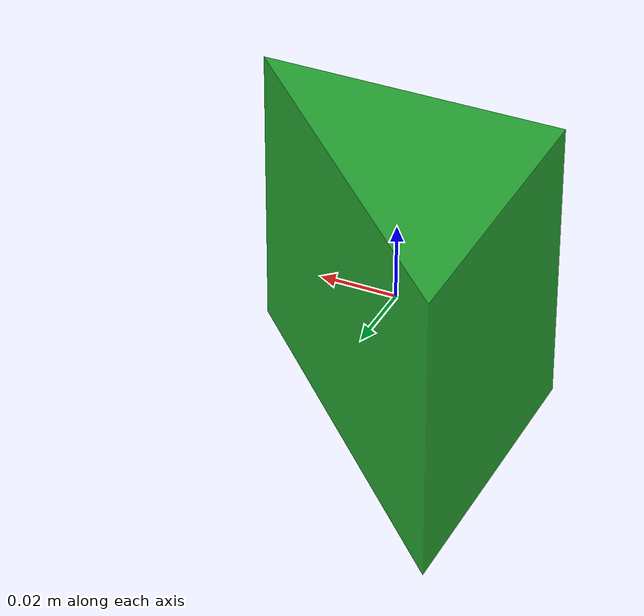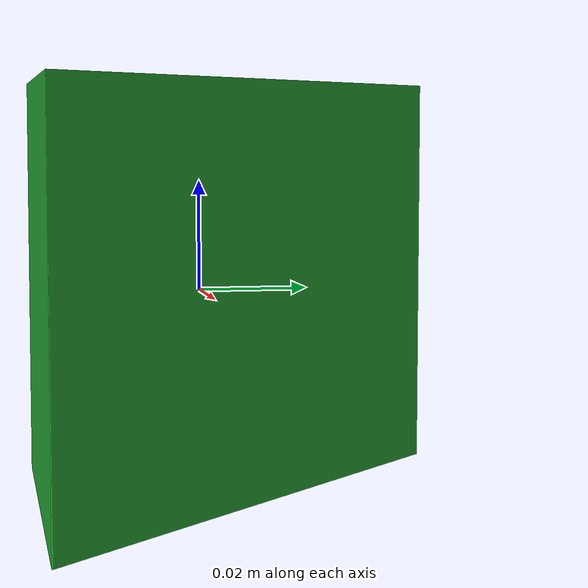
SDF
<?xml version="1.0" ?>
<sdf version="1.5">
  <model name="green_triangle">
    <gravity>1</gravity>
    <link name="link">
      <pose>0 0 0 0 0 0</pose>
      <collision name="collision">
        <geometry>
          <mesh>
						<uri>model://green_triangle/meshes/triangular_prism.dae</uri>
						<scale>0.04 0.04 0.03831</scale>
					</mesh>
        </geometry>
      </collision>
      <visual name="visual">
        <geometry>
          <mesh>
						<uri>model://green_triangle/meshes/triangular_prism.dae</uri>
						<scale>0.04 0.04 0.03831</scale>
					</mesh>
        </geometry>
        <material>
          <script>
            <uri>file://media/materials/scripts/gazebo.material</uri>
	    <name>Gazebo/Green</name>
          </script>
        </material>
      </visual>
      <inertial>
          <inertia>
            <ixx>10</ixx>
            <ixy>0</ixy>
            <ixz>0</ixz>
            <iyy>10</iyy>
            <iyz>0</iyz>
            <izz>10</izz>
          </inertia>
          <mass>0.005</mass>
        </inertial>
    </link>
  </model>
</sdf>
